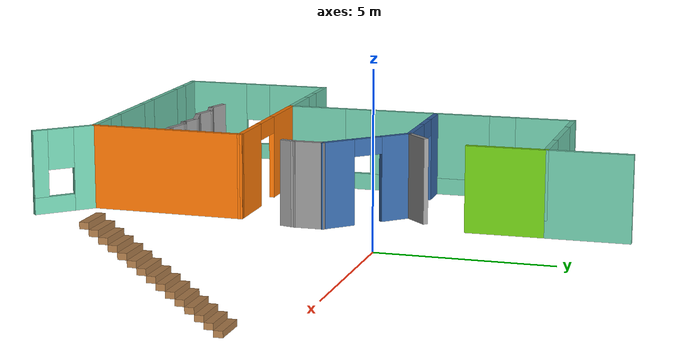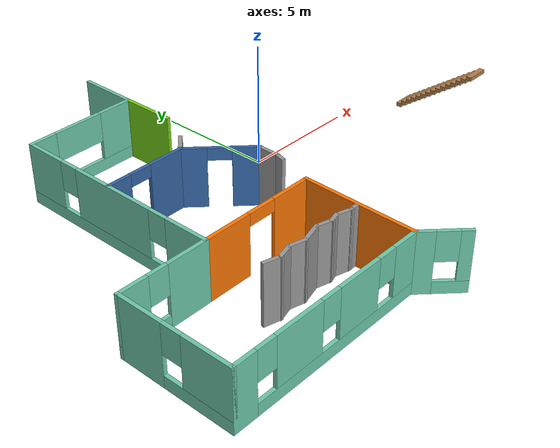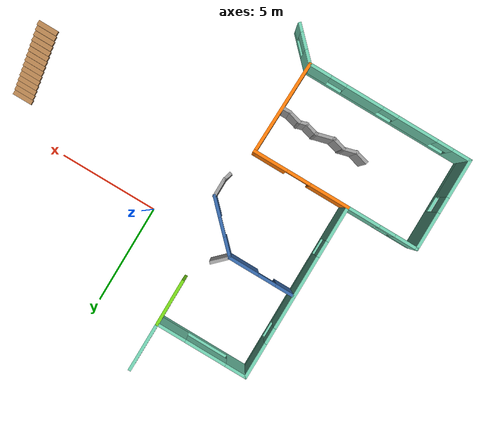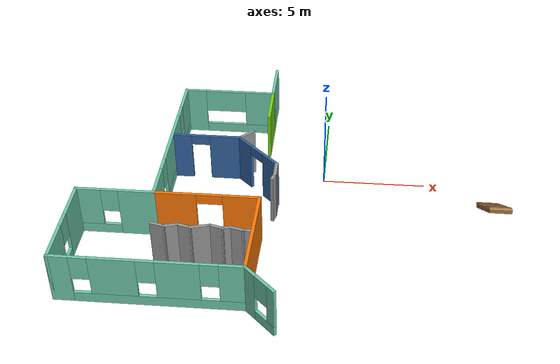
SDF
<sdf version="1.6">
 <model name="model">
  <pose>-1.34408 -2.0758 0 0 -0 0</pose>
  <link name="Stairs_0">
   <visual name="Stairs_0_Visual_0">
    <pose>9.38776 0.705751 0.083333 0 -0 0</pose>
    <geometry><box><size>1 0.233333 0.166667</size></box></geometry>
    <material>
     <script><uri>file://media/materials/scripts/gazebo.material</uri><name>Gazebo/Wood</name></script>
     <ambient>1 1 1 1</ambient>
    </material>
    <meta><layer>0</layer></meta>
   </visual>
   <collision name="Stairs_0_Collision_0">
    <geometry><box><size>1 0.233333 0.166667</size></box></geometry>
    <pose>9.38776 0.705751 0.083333 0 -0 0</pose>
   </collision>
   <visual name="Stairs_0_Visual_1">
    <pose>9.38776 0.472418 0.25 0 -0 0</pose>
    <geometry><box><size>1 0.233333 0.166667</size></box></geometry>
    <material>
     <script><uri>file://media/materials/scripts/gazebo.material</uri><name>Gazebo/Wood</name></script>
     <ambient>1 1 1 1</ambient>
    </material>
    <meta><layer>0</layer></meta>
   </visual>
   <collision name="Stairs_0_Collision_1">
    <geometry><box><size>1 0.233333 0.166667</size></box></geometry>
    <pose>9.38776 0.472418 0.25 0 -0 0</pose>
   </collision>
   <visual name="Stairs_0_Visual_2">
    <pose>9.38776 0.239084 0.416667 0 -0 0</pose>
    <geometry><box><size>1 0.233333 0.166667</size></box></geometry>
    <material>
     <script><uri>file://media/materials/scripts/gazebo.material</uri><name>Gazebo/Wood</name></script>
     <ambient>1 1 1 1</ambient>
    </material>
    <meta><layer>0</layer></meta>
   </visual>
   <collision name="Stairs_0_Collision_2">
    <geometry><box><size>1 0.233333 0.166667</size></box></geometry>
    <pose>9.38776 0.239084 0.416667 0 -0 0</pose>
   </collision>
   <visual name="Stairs_0_Visual_3">
    <pose>9.38776 0.005751 0.583333 0 -0 0</pose>
    <geometry><box><size>1 0.233333 0.166667</size></box></geometry>
    <material>
     <script><uri>file://media/materials/scripts/gazebo.material</uri><name>Gazebo/Wood</name></script>
     <ambient>1 1 1 1</ambient>
    </material>
    <meta><layer>0</layer></meta>
   </visual>
   <collision name="Stairs_0_Collision_3">
    <geometry><box><size>1 0.233333 0.166667</size></box></geometry>
    <pose>9.38776 0.005751 0.583333 0 -0 0</pose>
   </collision>
   <visual name="Stairs_0_Visual_4">
    <pose>9.38776 -0.227582 0.75 0 -0 0</pose>
    <geometry><box><size>1 0.233333 0.166667</size></box></geometry>
    <material>
     <script><uri>file://media/materials/scripts/gazebo.material</uri><name>Gazebo/Wood</name></script>
     <ambient>1 1 1 1</ambient>
    </material>
    <meta><layer>0</layer></meta>
   </visual>
   <collision name="Stairs_0_Collision_4">
    <geometry><box><size>1 0.233333 0.166667</size></box></geometry>
    <pose>9.38776 -0.227582 0.75 0 -0 0</pose>
   </collision>
   <visual name="Stairs_0_Visual_5">
    <pose>9.38776 -0.460916 0.916667 0 -0 0</pose>
    <geometry><box><size>1 0.233333 0.166667</size></box></geometry>
    <material>
     <script><uri>file://media/materials/scripts/gazebo.material</uri><name>Gazebo/Wood</name></script>
     <ambient>1 1 1 1</ambient>
    </material>
    <meta><layer>0</layer></meta>
   </visual>
   <collision name="Stairs_0_Collision_5">
    <geometry><box><size>1 0.233333 0.166667</size></box></geometry>
    <pose>9.38776 -0.460916 0.916667 0 -0 0</pose>
   </collision>
   <visual name="Stairs_0_Visual_6">
    <pose>9.38776 -0.694249 1.08333 0 -0 0</pose>
    <geometry><box><size>1 0.233333 0.166667</size></box></geometry>
    <material>
     <script><uri>file://media/materials/scripts/gazebo.material</uri><name>Gazebo/Wood</name></script>
     <ambient>1 1 1 1</ambient>
    </material>
    <meta><layer>0</layer></meta>
   </visual>
   <collision name="Stairs_0_Collision_6">
    <geometry><box><size>1 0.233333 0.166667</size></box></geometry>
    <pose>9.38776 -0.694249 1.08333 0 -0 0</pose>
   </collision>
   <visual name="Stairs_0_Visual_7">
    <pose>9.38776 -0.927582 1.25 0 -0 0</pose>
    <geometry><box><size>1 0.233333 0.166667</size></box></geometry>
    <material>
     <script><uri>file://media/materials/scripts/gazebo.material</uri><name>Gazebo/Wood</name></script>
     <ambient>1 1 1 1</ambient>
    </material>
    <meta><layer>0</layer></meta>
   </visual>
   <collision name="Stairs_0_Collision_7">
    <geometry><box><size>1 0.233333 0.166667</size></box></geometry>
    <pose>9.38776 -0.927582 1.25 0 -0 0</pose>
   </collision>
   <visual name="Stairs_0_Visual_8">
    <pose>9.38776 -1.16092 1.41667 0 -0 0</pose>
    <geometry><box><size>1 0.233333 0.166667</size></box></geometry>
    <material>
     <script><uri>file://media/materials/scripts/gazebo.material</uri><name>Gazebo/Wood</name></script>
     <ambient>1 1 1 1</ambient>
    </material>
    <meta><layer>0</layer></meta>
   </visual>
   <collision name="Stairs_0_Collision_8">
    <geometry><box><size>1 0.233333 0.166667</size></box></geometry>
    <pose>9.38776 -1.16092 1.41667 0 -0 0</pose>
   </collision>
   <visual name="Stairs_0_Visual_9">
    <pose>9.38776 -1.39425 1.58333 0 -0 0</pose>
    <geometry><box><size>1 0.233333 0.166667</size></box></geometry>
    <material>
     <script><uri>file://media/materials/scripts/gazebo.material</uri><name>Gazebo/Wood</name></script>
     <ambient>1 1 1 1</ambient>
    </material>
    <meta><layer>0</layer></meta>
   </visual>
   <collision name="Stairs_0_Collision_9">
    <geometry><box><size>1 0.233333 0.166667</size></box></geometry>
    <pose>9.38776 -1.39425 1.58333 0 -0 0</pose>
   </collision>
   <visual name="Stairs_0_Visual_10">
    <pose>9.38776 -1.62758 1.75 0 -0 0</pose>
    <geometry><box><size>1 0.233333 0.166667</size></box></geometry>
    <material>
     <script><uri>file://media/materials/scripts/gazebo.material</uri><name>Gazebo/Wood</name></script>
     <ambient>1 1 1 1</ambient>
    </material>
    <meta><layer>0</layer></meta>
   </visual>
   <collision name="Stairs_0_Collision_10">
    <geometry><box><size>1 0.233333 0.166667</size></box></geometry>
    <pose>9.38776 -1.62758 1.75 0 -0 0</pose>
   </collision>
   <visual name="Stairs_0_Visual_11">
    <pose>9.38776 -1.86092 1.91667 0 -0 0</pose>
    <geometry><box><size>1 0.233333 0.166667</size></box></geometry>
    <material>
     <script><uri>file://media/materials/scripts/gazebo.material</uri><name>Gazebo/Wood</name></script>
     <ambient>1 1 1 1</ambient>
    </material>
    <meta><layer>0</layer></meta>
   </visual>
   <collision name="Stairs_0_Collision_11">
    <geometry><box><size>1 0.233333 0.166667</size></box></geometry>
    <pose>9.38776 -1.86092 1.91667 0 -0 0</pose>
   </collision>
   <visual name="Stairs_0_Visual_12">
    <pose>9.38776 -2.09425 2.08333 0 -0 0</pose>
    <geometry><box><size>1 0.233333 0.166667</size></box></geometry>
    <material>
     <script><uri>file://media/materials/scripts/gazebo.material</uri><name>Gazebo/Wood</name></script>
     <ambient>1 1 1 1</ambient>
    </material>
    <meta><layer>0</layer></meta>
   </visual>
   <collision name="Stairs_0_Collision_12">
    <geometry><box><size>1 0.233333 0.166667</size></box></geometry>
    <pose>9.38776 -2.09425 2.08333 0 -0 0</pose>
   </collision>
   <visual name="Stairs_0_Visual_13">
    <pose>9.38776 -2.32758 2.25 0 -0 0</pose>
    <geometry><box><size>1 0.233333 0.166667</size></box></geometry>
    <material>
     <script><uri>file://media/materials/scripts/gazebo.material</uri><name>Gazebo/Wood</name></script>
     <ambient>1 1 1 1</ambient>
    </material>
    <meta><layer>0</layer></meta>
   </visual>
   <collision name="Stairs_0_Collision_13">
    <geometry><box><size>1 0.233333 0.166667</size></box></geometry>
    <pose>9.38776 -2.32758 2.25 0 -0 0</pose>
   </collision>
   <visual name="Stairs_0_Visual_14">
    <pose>9.38776 -2.56092 2.41667 0 -0 0</pose>
    <geometry><box><size>1 0.233333 0.166667</size></box></geometry>
    <material>
     <script><uri>file://media/materials/scripts/gazebo.material</uri><name>Gazebo/Wood</name></script>
     <ambient>1 1 1 1</ambient>
    </material>
    <meta><layer>0</layer></meta>
   </visual>
   <collision name="Stairs_0_Collision_14">
    <geometry><box><size>1 0.233333 0.166667</size></box></geometry>
    <pose>9.38776 -2.56092 2.41667 0 -0 0</pose>
   </collision>
  </link>
  <link name="Wall_16">
   <pose>-3.78776 -2.63039 0 0 -0 3.14159</pose>
   <visual name="Wall_16_Visual_0">
    <pose>-1.61733 0 1.25 0 -0 0</pose>
    <geometry><box><size>1.76534 0.15 2.5</size></box></geometry>
    <material>
     <script><uri>file://media/materials/scripts/gazebo.material</uri><name>Gazebo/Grey</name></script>
     <ambient>0.996078 0.47451 0.0196078 1</ambient>
    </material>
    <meta><layer>0</layer></meta>
   </visual>
   <collision name="Wall_16_Collision_0">
    <geometry><box><size>1.76534 0.15 2.5</size></box></geometry>
    <pose>-1.61733 0 1.25 0 -0 0</pose>
   </collision>
   <visual name="Wall_16_Visual_1">
    <pose>1.48562 0 1.25 0 -0 0</pose>
    <geometry><box><size>2.02876 0.15 2.5</size></box></geometry>
    <material>
     <script><uri>file://media/materials/scripts/gazebo.material</uri><name>Gazebo/Grey</name></script>
     <ambient>0.996078 0.47451 0.0196078 1</ambient>
    </material>
    <meta><layer>0</layer></meta>
   </visual>
   <collision name="Wall_16_Collision_1">
    <geometry><box><size>2.02876 0.15 2.5</size></box></geometry>
    <pose>1.48562 0 1.25 0 -0 0</pose>
   </collision>
   <visual name="Wall_16_Visual_2">
    <pose>-0.131714 0 2.25 0 -0 0</pose>
    <geometry><box><size>1.2059 0.15 0.5</size></box></geometry>
    <material>
     <script><uri>file://media/materials/scripts/gazebo.material</uri><name>Gazebo/Grey</name></script>
     <ambient>0.996078 0.47451 0.0196078 1</ambient>
    </material>
    <meta><layer>0</layer></meta>
   </visual>
   <collision name="Wall_16_Collision_2">
    <geometry><box><size>1.2059 0.15 0.5</size></box></geometry>
    <pose>-0.131714 0 2.25 0 -0 0</pose>
   </collision>
  </link>
  <link name="Wall_17">
   <pose>-6.21276 1.79461 0 0 -0 1.5708</pose>
   <visual name="Wall_17_Visual_0">
    <pose>-3.56709 0 1.25 0 -0 0</pose>
    <geometry><box><size>1.86582 0.15 2.5</size></box></geometry>
    <material>
     <script><uri>file://media/materials/scripts/gazebo.material</uri><name>Gazebo/Grey</name></script>
     <ambient>0.435294 0.796078 0.67451 1</ambient>
    </material>
    <meta><layer>0</layer></meta>
   </visual>
   <collision name="Wall_17_Collision_0">
    <geometry><box><size>1.86582 0.15 2.5</size></box></geometry>
    <pose>-3.56709 0 1.25 0 -0 0</pose>
   </collision>
   <visual name="Wall_17_Visual_1">
    <pose>0.932909 0 0.25 0 -0 0</pose>
    <geometry><box><size>7.13418 0.15 0.5</size></box></geometry>
    <material>
     <script><uri>file://media/materials/scripts/gazebo.material</uri><name>Gazebo/Grey</name></script>
     <ambient>0.435294 0.796078 0.67451 1</ambient>
    </material>
    <meta><layer>0</layer></meta>
   </visual>
   <collision name="Wall_17_Collision_1">
    <geometry><box><size>7.13418 0.15 0.5</size></box></geometry>
    <pose>0.932909 0 0.25 0 -0 0</pose>
   </collision>
   <visual name="Wall_17_Visual_2">
    <pose>0.029496 0 1.5 0 -0 0</pose>
    <geometry><box><size>3.72735 0.15 2</size></box></geometry>
    <material>
     <script><uri>file://media/materials/scripts/gazebo.material</uri><name>Gazebo/Grey</name></script>
     <ambient>0.435294 0.796078 0.67451 1</ambient>
    </material>
    <meta><layer>0</layer></meta>
   </visual>
   <collision name="Wall_17_Collision_2">
    <geometry><box><size>3.72735 0.15 2</size></box></geometry>
    <pose>0.029496 0 1.5 0 -0 0</pose>
   </collision>
   <visual name="Wall_17_Visual_3">
    <pose>3.59659 0 1.5 0 -0 0</pose>
    <geometry><box><size>1.80683 0.15 2</size></box></geometry>
    <material>
     <script><uri>file://media/materials/scripts/gazebo.material</uri><name>Gazebo/Grey</name></script>
     <ambient>0.435294 0.796078 0.67451 1</ambient>
    </material>
    <meta><layer>0</layer></meta>
   </visual>
   <collision name="Wall_17_Collision_3">
    <geometry><box><size>1.80683 0.15 2</size></box></geometry>
    <pose>3.59659 0 1.5 0 -0 0</pose>
   </collision>
   <visual name="Wall_17_Visual_4">
    <pose>-2.23418 0 1.9 0 -0 0</pose>
    <geometry><box><size>0.8 0.15 1.2</size></box></geometry>
    <material>
     <script><uri>file://media/materials/scripts/gazebo.material</uri><name>Gazebo/Grey</name></script>
     <ambient>0.435294 0.796078 0.67451 1</ambient>
    </material>
    <meta><layer>0</layer></meta>
   </visual>
   <collision name="Wall_17_Collision_4">
    <geometry><box><size>0.8 0.15 1.2</size></box></geometry>
    <pose>-2.23418 0 1.9 0 -0 0</pose>
   </collision>
   <visual name="Wall_17_Visual_5">
    <pose>2.29317 0 1.9 0 -0 0</pose>
    <geometry><box><size>0.8 0.15 1.2</size></box></geometry>
    <material>
     <script><uri>file://media/materials/scripts/gazebo.material</uri><name>Gazebo/Grey</name></script>
     <ambient>0.435294 0.796078 0.67451 1</ambient>
    </material>
    <meta><layer>0</layer></meta>
   </visual>
   <collision name="Wall_17_Collision_5">
    <geometry><box><size>0.8 0.15 1.2</size></box></geometry>
    <pose>2.29317 0 1.9 0 -0 0</pose>
   </collision>
  </link>
  <link name="Wall_21">
   <pose>-4.53435 2.02213 0 0 -0 0</pose>
   <visual name="Wall_21_Visual_0">
    <pose>-1.22897 0 1.25 0 -0 0</pose>
    <geometry><box><size>1.04206 0.15 2.5</size></box></geometry>
    <material>
     <script><uri>file://media/materials/scripts/gazebo.material</uri><name>Gazebo/Grey</name></script>
     <ambient>0.203922 0.396078 0.643137 1</ambient>
    </material>
    <meta><layer>0</layer></meta>
   </visual>
   <collision name="Wall_21_Collision_0">
    <geometry><box><size>1.04206 0.15 2.5</size></box></geometry>
    <pose>-1.22897 0 1.25 0 -0 0</pose>
   </collision>
   <visual name="Wall_21_Visual_1">
    <pose>0.971028 0 1.25 0 -0 0</pose>
    <geometry><box><size>1.55794 0.15 2.5</size></box></geometry>
    <material>
     <script><uri>file://media/materials/scripts/gazebo.material</uri><name>Gazebo/Grey</name></script>
     <ambient>0.203922 0.396078 0.643137 1</ambient>
    </material>
    <meta><layer>0</layer></meta>
   </visual>
   <collision name="Wall_21_Collision_1">
    <geometry><box><size>1.55794 0.15 2.5</size></box></geometry>
    <pose>0.971028 0 1.25 0 -0 0</pose>
   </collision>
   <visual name="Wall_21_Visual_2">
    <pose>-0.257943 0 2.25 0 -0 0</pose>
    <geometry><box><size>0.9 0.15 0.5</size></box></geometry>
    <material>
     <script><uri>file://media/materials/scripts/gazebo.material</uri><name>Gazebo/Grey</name></script>
     <ambient>0.203922 0.396078 0.643137 1</ambient>
    </material>
    <meta><layer>0</layer></meta>
   </visual>
   <collision name="Wall_21_Collision_2">
    <geometry><box><size>0.9 0.15 0.5</size></box></geometry>
    <pose>-0.257943 0 2.25 0 -0 0</pose>
   </collision>
  </link>
  <link name="Wall_28">
   <pose>-1.85172 1.0145 0 0 -0 -0.785398</pose>
   <visual name="Wall_28_Visual_0">
    <pose>-0.981423 0 1.25 0 -0 0</pose>
    <geometry><box><size>1.03716 0.15 2.5</size></box></geometry>
    <material>
     <script><uri>file://media/materials/scripts/gazebo.material</uri><name>Gazebo/Grey</name></script>
     <ambient>0.203922 0.396078 0.643137 1</ambient>
    </material>
    <meta><layer>0</layer></meta>
   </visual>
   <collision name="Wall_28_Collision_0">
    <geometry><box><size>1.03716 0.15 2.5</size></box></geometry>
    <pose>-0.981423 0 1.25 0 -0 0</pose>
   </collision>
   <visual name="Wall_28_Visual_1">
    <pose>0.968577 0 1.25 0 -0 0</pose>
    <geometry><box><size>1.06285 0.15 2.5</size></box></geometry>
    <material>
     <script><uri>file://media/materials/scripts/gazebo.material</uri><name>Gazebo/Grey</name></script>
     <ambient>0.203922 0.396078 0.643137 1</ambient>
    </material>
    <meta><layer>0</layer></meta>
   </visual>
   <collision name="Wall_28_Collision_1">
    <geometry><box><size>1.06285 0.15 2.5</size></box></geometry>
    <pose>0.968577 0 1.25 0 -0 0</pose>
   </collision>
   <visual name="Wall_28_Visual_2">
    <pose>-0.012845 0 2.25 0 -0 0</pose>
    <geometry><box><size>0.9 0.15 0.5</size></box></geometry>
    <material>
     <script><uri>file://media/materials/scripts/gazebo.material</uri><name>Gazebo/Grey</name></script>
     <ambient>0.203922 0.396078 0.643137 1</ambient>
    </material>
    <meta><layer>0</layer></meta>
   </visual>
   <collision name="Wall_28_Collision_2">
    <geometry><box><size>0.9 0.15 0.5</size></box></geometry>
    <pose>-0.012845 0 2.25 0 -0 0</pose>
   </collision>
  </link>
  <link name="Wall_47">
   <pose>-8.01276 -2.63039 0 0 -0 3.14159</pose>
   <visual name="Wall_47_Visual_0">
    <pose>-1.00859 0 1.25 0 -0 0</pose>
    <geometry><box><size>1.73283 0.15 2.5</size></box></geometry>
    <material>
     <script><uri>file://media/materials/scripts/gazebo.material</uri><name>Gazebo/Grey</name></script>
     <ambient>0.435294 0.796078 0.67451 1</ambient>
    </material>
    <meta><layer>0</layer></meta>
   </visual>
   <collision name="Wall_47_Collision_0">
    <geometry><box><size>1.73283 0.15 2.5</size></box></geometry>
    <pose>-1.00859 0 1.25 0 -0 0</pose>
   </collision>
   <visual name="Wall_47_Visual_1">
    <pose>0.866413 0 0.25 0 -0 0</pose>
    <geometry><box><size>2.01717 0.15 0.5</size></box></geometry>
    <material>
     <script><uri>file://media/materials/scripts/gazebo.material</uri><name>Gazebo/Grey</name></script>
     <ambient>0.435294 0.796078 0.67451 1</ambient>
    </material>
    <meta><layer>0</layer></meta>
   </visual>
   <collision name="Wall_47_Collision_1">
    <geometry><box><size>2.01717 0.15 0.5</size></box></geometry>
    <pose>0.866413 0 0.25 0 -0 0</pose>
   </collision>
   <visual name="Wall_47_Visual_2">
    <pose>1.26641 0 1.5 0 -0 0</pose>
    <geometry><box><size>1.21717 0.15 2</size></box></geometry>
    <material>
     <script><uri>file://media/materials/scripts/gazebo.material</uri><name>Gazebo/Grey</name></script>
     <ambient>0.435294 0.796078 0.67451 1</ambient>
    </material>
    <meta><layer>0</layer></meta>
   </visual>
   <collision name="Wall_47_Collision_2">
    <geometry><box><size>1.21717 0.15 2</size></box></geometry>
    <pose>1.26641 0 1.5 0 -0 0</pose>
   </collision>
   <visual name="Wall_47_Visual_3">
    <pose>0.257826 0 1.9 0 -0 0</pose>
    <geometry><box><size>0.8 0.15 1.2</size></box></geometry>
    <material>
     <script><uri>file://media/materials/scripts/gazebo.material</uri><name>Gazebo/Grey</name></script>
     <ambient>0.435294 0.796078 0.67451 1</ambient>
    </material>
    <meta><layer>0</layer></meta>
   </visual>
   <collision name="Wall_47_Collision_3">
    <geometry><box><size>0.8 0.15 1.2</size></box></geometry>
    <pose>0.257826 0 1.9 0 -0 0</pose>
   </collision>
  </link>
  <link name="Wall_48">
   <pose>-9.81276 -4.93039 0 0 -0 -1.5708</pose>
   <visual name="Wall_48_Visual_0">
    <pose>-1.40172 0 1.25 0 -0 0</pose>
    <geometry><box><size>1.94656 0.15 2.5</size></box></geometry>
    <material>
     <script><uri>file://media/materials/scripts/gazebo.material</uri><name>Gazebo/Grey</name></script>
     <ambient>0.435294 0.796078 0.67451 1</ambient>
    </material>
    <meta><layer>0</layer></meta>
   </visual>
   <collision name="Wall_48_Collision_0">
    <geometry><box><size>1.94656 0.15 2.5</size></box></geometry>
    <pose>-1.40172 0 1.25 0 -0 0</pose>
   </collision>
   <visual name="Wall_48_Visual_1">
    <pose>0.973278 0 0.25 0 -0 0</pose>
    <geometry><box><size>2.80344 0.15 0.5</size></box></geometry>
    <material>
     <script><uri>file://media/materials/scripts/gazebo.material</uri><name>Gazebo/Grey</name></script>
     <ambient>0.435294 0.796078 0.67451 1</ambient>
    </material>
    <meta><layer>0</layer></meta>
   </visual>
   <collision name="Wall_48_Collision_1">
    <geometry><box><size>2.80344 0.15 0.5</size></box></geometry>
    <pose>0.973278 0 0.25 0 -0 0</pose>
   </collision>
   <visual name="Wall_48_Visual_2">
    <pose>1.37328 0 1.5 0 -0 0</pose>
    <geometry><box><size>2.00344 0.15 2</size></box></geometry>
    <material>
     <script><uri>file://media/materials/scripts/gazebo.material</uri><name>Gazebo/Grey</name></script>
     <ambient>0.435294 0.796078 0.67451 1</ambient>
    </material>
    <meta><layer>0</layer></meta>
   </visual>
   <collision name="Wall_48_Collision_2">
    <geometry><box><size>2.00344 0.15 2</size></box></geometry>
    <pose>1.37328 0 1.5 0 -0 0</pose>
   </collision>
   <visual name="Wall_48_Visual_3">
    <pose>-0.028444 0 1.9 0 -0 0</pose>
    <geometry><box><size>0.8 0.15 1.2</size></box></geometry>
    <material>
     <script><uri>file://media/materials/scripts/gazebo.material</uri><name>Gazebo/Grey</name></script>
     <ambient>0.435294 0.796078 0.67451 1</ambient>
    </material>
    <meta><layer>0</layer></meta>
   </visual>
   <collision name="Wall_48_Collision_3">
    <geometry><box><size>0.8 0.15 1.2</size></box></geometry>
    <pose>-0.028444 0 1.9 0 -0 0</pose>
   </collision>
  </link>
  <link name="Wall_53">
   <pose>-5.63776 -7.23039 0 0 -0 0</pose>
   <visual name="Wall_53_Visual_0">
    <pose>-3.75772 0 1.25 0 -0 0</pose>
    <geometry><box><size>0.984555 0.15 2.5</size></box></geometry>
    <material>
     <script><uri>file://media/materials/scripts/gazebo.material</uri><name>Gazebo/Grey</name></script>
     <ambient>0.435294 0.796078 0.67451 1</ambient>
    </material>
    <meta><layer>0</layer></meta>
   </visual>
   <collision name="Wall_53_Collision_0">
    <geometry><box><size>0.984555 0.15 2.5</size></box></geometry>
    <pose>-3.75772 0 1.25 0 -0 0</pose>
   </collision>
   <visual name="Wall_53_Visual_1">
    <pose>0.492277 0 0.25 0 -0 0</pose>
    <geometry><box><size>7.51544 0.15 0.5</size></box></geometry>
    <material>
     <script><uri>file://media/materials/scripts/gazebo.material</uri><name>Gazebo/Grey</name></script>
     <ambient>0.435294 0.796078 0.67451 1</ambient>
    </material>
    <meta><layer>0</layer></meta>
   </visual>
   <collision name="Wall_53_Collision_1">
    <geometry><box><size>7.51544 0.15 0.5</size></box></geometry>
    <pose>0.492277 0 0.25 0 -0 0</pose>
   </collision>
   <visual name="Wall_53_Visual_2">
    <pose>-1.44647 0 1.5 0 -0 0</pose>
    <geometry><box><size>2.03796 0.15 2</size></box></geometry>
    <material>
     <script><uri>file://media/materials/scripts/gazebo.material</uri><name>Gazebo/Grey</name></script>
     <ambient>0.435294 0.796078 0.67451 1</ambient>
    </material>
    <meta><layer>0</layer></meta>
   </visual>
   <collision name="Wall_53_Collision_2">
    <geometry><box><size>2.03796 0.15 2</size></box></geometry>
    <pose>-1.44647 0 1.5 0 -0 0</pose>
   </collision>
   <visual name="Wall_53_Visual_3">
    <pose>1.32171 0 1.5 0 -0 0</pose>
    <geometry><box><size>1.89839 0.15 2</size></box></geometry>
    <material>
     <script><uri>file://media/materials/scripts/gazebo.material</uri><name>Gazebo/Grey</name></script>
     <ambient>0.435294 0.796078 0.67451 1</ambient>
    </material>
    <meta><layer>0</layer></meta>
   </visual>
   <collision name="Wall_53_Collision_3">
    <geometry><box><size>1.89839 0.15 2</size></box></geometry>
    <pose>1.32171 0 1.5 0 -0 0</pose>
   </collision>
   <visual name="Wall_53_Visual_4">
    <pose>3.66045 0 1.5 0 -0 0</pose>
    <geometry><box><size>1.1791 0.15 2</size></box></geometry>
    <material>
     <script><uri>file://media/materials/scripts/gazebo.material</uri><name>Gazebo/Grey</name></script>
     <ambient>0.435294 0.796078 0.67451 1</ambient>
    </material>
    <meta><layer>0</layer></meta>
   </visual>
   <collision name="Wall_53_Collision_4">
    <geometry><box><size>1.1791 0.15 2</size></box></geometry>
    <pose>3.66045 0 1.5 0 -0 0</pose>
   </collision>
   <visual name="Wall_53_Visual_5">
    <pose>-2.86544 0 1.9 0 -0 0</pose>
    <geometry><box><size>0.8 0.15 1.2</size></box></geometry>
    <material>
     <script><uri>file://media/materials/scripts/gazebo.material</uri><name>Gazebo/Grey</name></script>
     <ambient>0.435294 0.796078 0.67451 1</ambient>
    </material>
    <meta><layer>0</layer></meta>
   </visual>
   <collision name="Wall_53_Collision_5">
    <geometry><box><size>0.8 0.15 1.2</size></box></geometry>
    <pose>-2.86544 0 1.9 0 -0 0</pose>
   </collision>
   <visual name="Wall_53_Visual_6">
    <pose>-0.027486 0 1.9 0 -0 0</pose>
    <geometry><box><size>0.8 0.15 1.2</size></box></geometry>
    <material>
     <script><uri>file://media/materials/scripts/gazebo.material</uri><name>Gazebo/Grey</name></script>
     <ambient>0.435294 0.796078 0.67451 1</ambient>
    </material>
    <meta><layer>0</layer></meta>
   </visual>
   <collision name="Wall_53_Collision_6">
    <geometry><box><size>0.8 0.15 1.2</size></box></geometry>
    <pose>-0.027486 0 1.9 0 -0 0</pose>
   </collision>
   <visual name="Wall_53_Visual_7">
    <pose>2.6709 0 1.9 0 -0 0</pose>
    <geometry><box><size>0.8 0.15 1.2</size></box></geometry>
    <material>
     <script><uri>file://media/materials/scripts/gazebo.material</uri><name>Gazebo/Grey</name></script>
     <ambient>0.435294 0.796078 0.67451 1</ambient>
    </material>
    <meta><layer>0</layer></meta>
   </visual>
   <collision name="Wall_53_Collision_7">
    <geometry><box><size>0.8 0.15 1.2</size></box></geometry>
    <pose>2.6709 0 1.9 0 -0 0</pose>
   </collision>
  </link>
  <link name="Wall_58">
   <pose>-0.808686 -7.88447 0 0 -0 -0.785398</pose>
   <visual name="Wall_58_Visual_0">
    <pose>-0.62591 0 1.25 0 -0 0</pose>
    <geometry><box><size>0.74818 0.15 2.5</size></box></geometry>
    <material>
     <script><uri>file://media/materials/scripts/gazebo.material</uri><name>Gazebo/Grey</name></script>
     <ambient>0.435294 0.796078 0.67451 1</ambient>
    </material>
    <meta><layer>0</layer></meta>
   </visual>
   <collision name="Wall_58_Collision_0">
    <geometry><box><size>0.74818 0.15 2.5</size></box></geometry>
    <pose>-0.62591 0 1.25 0 -0 0</pose>
   </collision>
   <visual name="Wall_58_Visual_1">
    <pose>0.37409 0 0.25 0 -0 0</pose>
    <geometry><box><size>1.25182 0.15 0.5</size></box></geometry>
    <material>
     <script><uri>file://media/materials/scripts/gazebo.material</uri><name>Gazebo/Grey</name></script>
     <ambient>0.435294 0.796078 0.67451 1</ambient>
    </material>
    <meta><layer>0</layer></meta>
   </visual>
   <collision name="Wall_58_Collision_1">
    <geometry><box><size>1.25182 0.15 0.5</size></box></geometry>
    <pose>0.37409 0 0.25 0 -0 0</pose>
   </collision>
   <visual name="Wall_58_Visual_2">
    <pose>0.77409 0 1.5 0 -0 0</pose>
    <geometry><box><size>0.45182 0.15 2</size></box></geometry>
    <material>
     <script><uri>file://media/materials/scripts/gazebo.material</uri><name>Gazebo/Grey</name></script>
     <ambient>0.435294 0.796078 0.67451 1</ambient>
    </material>
    <meta><layer>0</layer></meta>
   </visual>
   <collision name="Wall_58_Collision_2">
    <geometry><box><size>0.45182 0.15 2</size></box></geometry>
    <pose>0.77409 0 1.5 0 -0 0</pose>
   </collision>
   <visual name="Wall_58_Visual_3">
    <pose>0.14818 0 1.9 0 -0 0</pose>
    <geometry><box><size>0.8 0.15 1.2</size></box></geometry>
    <material>
     <script><uri>file://media/materials/scripts/gazebo.material</uri><name>Gazebo/Grey</name></script>
     <ambient>0.435294 0.796078 0.67451 1</ambient>
    </material>
    <meta><layer>0</layer></meta>
   </visual>
   <collision name="Wall_58_Collision_3">
    <geometry><box><size>0.8 0.15 1.2</size></box></geometry>
    <pose>0.14818 0 1.9 0 -0 0</pose>
   </collision>
  </link>
  <link name="Wall_6">
   <pose>-3.91276 6.21961 0 0 -0 0</pose>
   <visual name="Wall_6_Visual_0">
    <pose>-1.81197 0 1.25 0 -0 0</pose>
    <geometry><box><size>1.12606 0.15 2.5</size></box></geometry>
    <material>
     <script><uri>file://media/materials/scripts/gazebo.material</uri><name>Gazebo/Grey</name></script>
     <ambient>0.435294 0.796078 0.67451 1</ambient>
    </material>
    <meta><layer>0</layer></meta>
   </visual>
   <collision name="Wall_6_Collision_0">
    <geometry><box><size>1.12606 0.15 2.5</size></box></geometry>
    <pose>-1.81197 0 1.25 0 -0 0</pose>
   </collision>
   <visual name="Wall_6_Visual_1">
    <pose>0.563031 0 0.25 0 -0 0</pose>
    <geometry><box><size>3.62394 0.15 0.5</size></box></geometry>
    <material>
     <script><uri>file://media/materials/scripts/gazebo.material</uri><name>Gazebo/Grey</name></script>
     <ambient>0.435294 0.796078 0.67451 1</ambient>
    </material>
    <meta><layer>0</layer></meta>
   </visual>
   <collision name="Wall_6_Collision_1">
    <geometry><box><size>3.62394 0.15 0.5</size></box></geometry>
    <pose>0.563031 0 0.25 0 -0 0</pose>
   </collision>
   <visual name="Wall_6_Visual_2">
    <pose>1.60543 0 1.5 0 -0 0</pose>
    <geometry><box><size>1.53915 0.15 2</size></box></geometry>
    <material>
     <script><uri>file://media/materials/scripts/gazebo.material</uri><name>Gazebo/Grey</name></script>
     <ambient>0.435294 0.796078 0.67451 1</ambient>
    </material>
    <meta><layer>0</layer></meta>
   </visual>
   <collision name="Wall_6_Collision_2">
    <geometry><box><size>1.53915 0.15 2</size></box></geometry>
    <pose>1.60543 0 1.5 0 -0 0</pose>
   </collision>
   <visual name="Wall_6_Visual_3">
    <pose>-0.206543 0 1.9 0 -0 0</pose>
    <geometry><box><size>2.08479 0.15 1.2</size></box></geometry>
    <material>
     <script><uri>file://media/materials/scripts/gazebo.material</uri><name>Gazebo/Grey</name></script>
     <ambient>0.435294 0.796078 0.67451 1</ambient>
    </material>
    <meta><layer>0</layer></meta>
   </visual>
   <collision name="Wall_6_Collision_3">
    <geometry><box><size>2.08479 0.15 1.2</size></box></geometry>
    <pose>-0.206543 0 1.9 0 -0 0</pose>
   </collision>
  </link>
  <link name="Wall_65">
   <collision name="Wall_65_Collision">
    <geometry><box><size>1 0.15 2.5</size></box></geometry>
    <pose>0 0 1.25 0 -0 0</pose>
   </collision>
   <visual name="Wall_65_Visual">
    <pose>0 0 1.25 0 -0 0</pose>
    <geometry><box><size>1 0.15 2.5</size></box></geometry>
    <material>
     <script><uri>file://media/materials/scripts/gazebo.material</uri><name>Gazebo/Grey</name></script>
     <ambient>0 0 0 1</ambient>
    </material>
    <meta><layer>0</layer></meta>
   </visual>
   <pose>-2.55882 2.32265 0 0 -0 0.785398</pose>
  </link>
  <link name="Wall_67">
   <collision name="Wall_67_Collision">
    <geometry><box><size>2.34232 0.15 2.5</size></box></geometry>
    <pose>0 0 1.25 0 -0 0</pose>
   </collision>
   <visual name="Wall_67_Visual">
    <pose>0 0 1.25 0 -0 0</pose>
    <geometry><box><size>2.34232 0.15 2.5</size></box></geometry>
    <material>
     <script><uri>file://media/materials/scripts/gazebo.material</uri><name>Gazebo/Grey</name></script>
     <ambient>0.45098 0.823529 0.0862745 1</ambient>
    </material>
    <meta><layer>0</layer></meta>
   </visual>
   <pose>-1.60684 5.12346 0 0 -0 -1.5654</pose>
  </link>
  <link name="Wall_69">
   <collision name="Wall_69_Collision">
    <geometry><box><size>4.75109 0.15 2.5</size></box></geometry>
    <pose>0 0 1.25 0 -0 0</pose>
   </collision>
   <visual name="Wall_69_Visual">
    <pose>0 0 1.25 0 -0 0</pose>
    <geometry><box><size>4.75109 0.15 2.5</size></box></geometry>
    <material>
     <script><uri>file://media/materials/scripts/gazebo.material</uri><name>Gazebo/Grey</name></script>
     <ambient>0.996078 0.47451 0.0196078 1</ambient>
    </material>
    <meta><layer>0</layer></meta>
   </visual>
   <pose>-1.41276 -4.93039 0 0 -0 1.54906</pose>
  </link>
  <link name="Wall_7">
   <collision name="Wall_7_Collision">
    <geometry><box><size>2.5 0.15 2.5</size></box></geometry>
    <pose>0 0 1.25 0 -0 0</pose>
   </collision>
   <visual name="Wall_7_Visual">
    <pose>0 0 1.25 0 -0 0</pose>
    <geometry><box><size>2.5 0.15 2.5</size></box></geometry>
    <material>
     <script><uri>file://media/materials/scripts/gazebo.material</uri><name>Gazebo/Grey</name></script>
     <ambient>0.435294 0.796078 0.67451 1</ambient>
    </material>
    <meta><layer>0</layer></meta>
   </visual>
   <pose>-1.61276 7.39461 0 0 -0 1.5708</pose>
  </link>
  <link name="Wall_75">
   <collision name="Wall_75_Collision">
    <geometry><box><size>0.5 0.15 2.5</size></box></geometry>
    <pose>0 0 1.25 0 -0 0</pose>
   </collision>
   <visual name="Wall_75_Visual">
    <pose>0 0 1.25 0 -0 0</pose>
    <geometry><box><size>0.5 0.15 2.5</size></box></geometry>
    <material>
     <script><uri>file://media/materials/scripts/gazebo.material</uri><name>Gazebo/Grey</name></script>
     <ambient>0 0 0 1</ambient>
    </material>
    <meta><layer>0</layer></meta>
   </visual>
   <pose>-1.63295 -4.93634 0 0 -0 3.14159</pose>
  </link>
  <link name="Wall_76">
   <collision name="Wall_76_Collision">
    <geometry><box><size>0.75 0.15 2.5</size></box></geometry>
    <pose>0 0 1.25 0 -0 0</pose>
   </collision>
   <visual name="Wall_76_Visual">
    <pose>0 0 1.25 0 -0 0</pose>
    <geometry><box><size>0.75 0.15 2.5</size></box></geometry>
    <material>
     <script><uri>file://media/materials/scripts/gazebo.material</uri><name>Gazebo/Grey</name></script>
     <ambient>0 0 0 1</ambient>
    </material>
    <meta><layer>0</layer></meta>
   </visual>
   <pose>-2.09773 -4.85869 0 0 -0 2.87979</pose>
  </link>
  <link name="Wall_77">
   <collision name="Wall_77_Collision">
    <geometry><box><size>0.5 0.15 2.5</size></box></geometry>
    <pose>0 0 1.25 0 -0 0</pose>
   </collision>
   <visual name="Wall_77_Visual">
    <pose>0 0 1.25 0 -0 0</pose>
    <geometry><box><size>0.5 0.15 2.5</size></box></geometry>
    <material>
     <script><uri>file://media/materials/scripts/gazebo.material</uri><name>Gazebo/Grey</name></script>
     <ambient>0 0 0 1</ambient>
    </material>
    <meta><layer>0</layer></meta>
   </visual>
   <pose>-2.55654 -4.82634 0 0 -0 -2.87979</pose>
  </link>
  <link name="Wall_78">
   <collision name="Wall_78_Collision">
    <geometry><box><size>0.75 0.15 2.5</size></box></geometry>
    <pose>0 0 1.25 0 -0 0</pose>
   </collision>
   <visual name="Wall_78_Visual">
    <pose>0 0 1.25 0 -0 0</pose>
    <geometry><box><size>0.75 0.15 2.5</size></box></geometry>
    <material>
     <script><uri>file://media/materials/scripts/gazebo.material</uri><name>Gazebo/Grey</name></script>
     <ambient>0 0 0 1</ambient>
    </material>
    <meta><layer>0</layer></meta>
   </visual>
   <pose>-3.01536 -4.79399 0 0 -0 2.87979</pose>
  </link>
  <link name="Wall_79">
   <collision name="Wall_79_Collision">
    <geometry><box><size>1 0.15 2.5</size></box></geometry>
    <pose>0 0 1.25 0 -0 0</pose>
   </collision>
   <visual name="Wall_79_Visual">
    <pose>0 0 1.25 0 -0 0</pose>
    <geometry><box><size>1 0.15 2.5</size></box></geometry>
    <material>
     <script><uri>file://media/materials/scripts/gazebo.material</uri><name>Gazebo/Grey</name></script>
     <ambient>0 0 0 1</ambient>
    </material>
    <meta><layer>0</layer></meta>
   </visual>
   <pose>-3.71566 -4.82634 0 0 -0 -2.87979</pose>
  </link>
  <link name="Wall_80">
   <collision name="Wall_80_Collision">
    <geometry><box><size>0.75 0.15 2.5</size></box></geometry>
    <pose>0 0 1.25 0 -0 0</pose>
   </collision>
   <visual name="Wall_80_Visual">
    <pose>0 0 1.25 0 -0 0</pose>
    <geometry><box><size>0.75 0.15 2.5</size></box></geometry>
    <material>
     <script><uri>file://media/materials/scripts/gazebo.material</uri><name>Gazebo/Grey</name></script>
     <ambient>0 0 0 1</ambient>
    </material>
    <meta><layer>0</layer></meta>
   </visual>
   <pose>-4.41595 -4.85869 0 0 -0 2.87979</pose>
  </link>
  <link name="Wall_81">
   <collision name="Wall_81_Collision">
    <geometry><box><size>0.75 0.15 2.5</size></box></geometry>
    <pose>0 0 1.25 0 -0 0</pose>
   </collision>
   <visual name="Wall_81_Visual">
    <pose>0 0 1.25 0 -0 0</pose>
    <geometry><box><size>0.75 0.15 2.5</size></box></geometry>
    <material>
     <script><uri>file://media/materials/scripts/gazebo.material</uri><name>Gazebo/Grey</name></script>
     <ambient>0 0 0 1</ambient>
    </material>
    <meta><layer>0</layer></meta>
   </visual>
   <pose>-4.99551 -4.85869 0 0 -0 -2.87979</pose>
  </link>
  <link name="Wall_82">
   <collision name="Wall_82_Collision">
    <geometry><box><size>0.75 0.15 2.5</size></box></geometry>
    <pose>0 0 1.25 0 -0 0</pose>
   </collision>
   <visual name="Wall_82_Visual">
    <pose>0 0 1.25 0 -0 0</pose>
    <geometry><box><size>0.75 0.15 2.5</size></box></geometry>
    <material>
     <script><uri>file://media/materials/scripts/gazebo.material</uri><name>Gazebo/Grey</name></script>
     <ambient>0 0 0 1</ambient>
    </material>
    <meta><layer>0</layer></meta>
   </visual>
   <pose>-5.57506 -4.85869 0 0 -0 2.87979</pose>
  </link>
  <link name="Wall_87">
   <collision name="Wall_87_Collision">
    <geometry><box><size>1 0.15 2.5</size></box></geometry>
    <pose>0 0 1.25 0 -0 0</pose>
   </collision>
   <visual name="Wall_87_Visual">
    <pose>0 0 1.25 0 -0 0</pose>
    <geometry><box><size>1 0.15 2.5</size></box></geometry>
    <material>
     <script><uri>file://media/materials/scripts/gazebo.material</uri><name>Gazebo/Grey</name></script>
     <ambient>0 0 0 1</ambient>
    </material>
    <meta><layer>0</layer></meta>
   </visual>
   <pose>-0.84409 -0.418128 0 0 -0 -1.5708</pose>
  </link>
  <link name="Wall_88">
   <collision name="Wall_88_Collision">
    <geometry><box><size>0.5 0.15 2.5</size></box></geometry>
    <pose>0 0 1.25 0 -0 0</pose>
   </collision>
   <visual name="Wall_88_Visual">
    <pose>0 0 1.25 0 -0 0</pose>
    <geometry><box><size>0.5 0.15 2.5</size></box></geometry>
    <material>
     <script><uri>file://media/materials/scripts/gazebo.material</uri><name>Gazebo/Grey</name></script>
     <ambient>0 0 0 1</ambient>
    </material>
    <meta><layer>0</layer></meta>
   </visual>
   <pose>-0.889384 -1.01217 0 0 -0 -1.8326</pose>
  </link>
  <static>1</static>
 </model>
</sdf>
